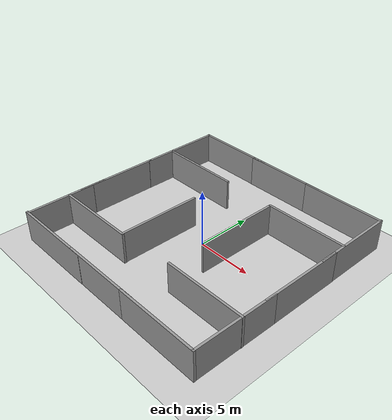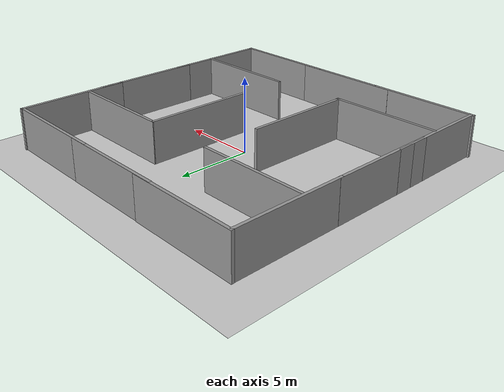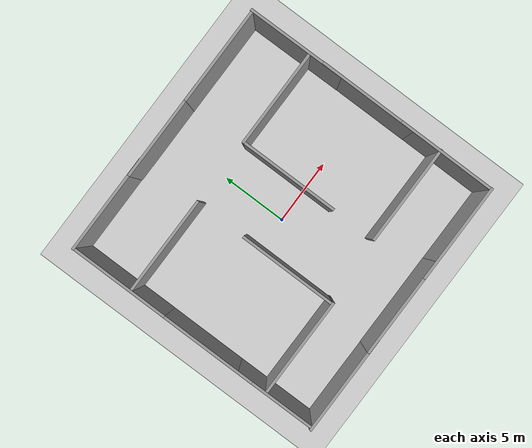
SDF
<sdf version="1.6">
 <world name="default">
  <light name="sun" type="directional">
   <pose>0 0 10 0 -0 0</pose>
   <diffuse>0.8 0.8 0.8 1</diffuse>
   <specular>0.2 0.2 0.2 1</specular>
   <attenuation>
    <range>1000</range>
    <constant>0.9</constant>
    <linear>0.01</linear>
    <quadratic>0.001</quadratic>
   </attenuation>
   <direction>-0.5 0.1 -0.9</direction>
  </light>
  <model name="ground_plane">
   <static>1</static>
   <link name="link">
    <collision name="collision">
     <geometry><plane><normal>0 0 1</normal><size>100 100</size></plane></geometry>
     <surface>
      <contact><collide_bitmask>65535</collide_bitmask></contact>
      <friction><ode><mu>100</mu><mu2>50</mu2></ode></friction>
     </surface>
    </collision>
    <visual name="visual">
     <cast_shadows>0</cast_shadows>
     <geometry><plane><normal>0 0 1</normal><size>100 100</size></plane></geometry>
     <material>
      <script><uri>file://media/materials/scripts/gazebo.material</uri><name>Gazebo/Grey</name></script>
     </material>
    </visual>
   </link>
  </model>
  <gravity>0 0 -9.8</gravity>
  <magnetic_field>6e-06 2.3e-05 -4.2e-05</magnetic_field>
  <atmosphere type="adiabatic"/>
  <physics name="default_physics" default="0" type="ode">
   <max_step_size>0.001</max_step_size>
   <real_time_factor>1</real_time_factor>
   <real_time_update_rate>1000</real_time_update_rate>
  </physics>
  <scene><ambient>0.4 0.4 0.4 1</ambient><background>0.7 0.7 0.7 1</background><shadows>1</shadows></scene>
  <spherical_coordinates>
   <surface_model>EARTH_WGS84</surface_model>
   <latitude_deg>0</latitude_deg>
   <longitude_deg>0</longitude_deg>
   <elevation>0</elevation>
   <heading_deg>0</heading_deg>
  </spherical_coordinates>
  <model name="grey_wall">
   <static>1</static>
   <link name="link">
    <pose>0 0 1.4 0 -0 0</pose>
    <collision name="collision"><geometry><box><size>7.5 0.2 2.8</size></box></geometry></collision>
    <visual name="visual">
     <cast_shadows>0</cast_shadows>
     <geometry><box><size>7.5 0.2 2.8</size></box></geometry>
     <material>
      <script>
       <uri>model://grey_wall/materials/scripts</uri>
       <uri>model://grey_wall/materials/textures</uri>
       <name>vrc/grey_wall</name>
      </script>
     </material>
    </visual>
   </link>
   <pose>6.27087 -9.84764 0 0 -0 0</pose>
  </model>
  <model name="grey_wall_clone">
   <static>1</static>
   <link name="link">
    <pose>0 0 1.4 0 -0 0</pose>
    <collision name="collision"><geometry><box><size>7.5 0.2 2.8</size></box></geometry></collision>
    <visual name="visual">
     <cast_shadows>0</cast_shadows>
     <geometry><box><size>7.5 0.2 2.8</size></box></geometry>
     <material>
      <script>
       <uri>model://grey_wall/materials/scripts</uri>
       <uri>model://grey_wall/materials/textures</uri>
       <name>vrc/grey_wall</name>
      </script>
     </material>
    </visual>
   </link>
   <pose>0.147568 -9.84131 0 0 -0 0</pose>
  </model>
  <model name="grey_wall_clone_0">
   <static>1</static>
   <link name="link">
    <pose>0 0 1.4 0 -0 0</pose>
    <collision name="collision"><geometry><box><size>7.5 0.2 2.8</size></box></geometry></collision>
    <visual name="visual">
     <cast_shadows>0</cast_shadows>
     <geometry><box><size>7.5 0.2 2.8</size></box></geometry>
     <material>
      <script>
       <uri>model://grey_wall/materials/scripts</uri>
       <uri>model://grey_wall/materials/textures</uri>
       <name>vrc/grey_wall</name>
      </script>
     </material>
    </visual>
   </link>
   <pose>-6.23276 -9.85236 0 0 -0 0</pose>
  </model>
  <model name="grey_wall_clone_1">
   <static>1</static>
   <link name="link">
    <pose>0 0 1.4 0 -0 0</pose>
    <collision name="collision"><geometry><box><size>7.5 0.2 2.8</size></box></geometry></collision>
    <visual name="visual">
     <cast_shadows>0</cast_shadows>
     <geometry><box><size>7.5 0.2 2.8</size></box></geometry>
     <material>
      <script>
       <uri>model://grey_wall/materials/scripts</uri>
       <uri>model://grey_wall/materials/textures</uri>
       <name>vrc/grey_wall</name>
      </script>
     </material>
    </visual>
   </link>
   <pose>9.9114 -6.17816 0 0 -0 1.56746</pose>
  </model>
  <model name="grey_wall_clone_2">
   <static>1</static>
   <link name="link">
    <pose>0 0 1.4 0 -0 0</pose>
    <collision name="collision"><geometry><box><size>7.5 0.2 2.8</size></box></geometry></collision>
    <visual name="visual">
     <cast_shadows>0</cast_shadows>
     <geometry><box><size>7.5 0.2 2.8</size></box></geometry>
     <material>
      <script>
       <uri>model://grey_wall/materials/scripts</uri>
       <uri>model://grey_wall/materials/textures</uri>
       <name>vrc/grey_wall</name>
      </script>
     </material>
    </visual>
   </link>
   <pose>9.91759 0.301688 0 0 0 -1.57177</pose>
  </model>
  <model name="grey_wall_clone_3">
   <static>1</static>
   <link name="link">
    <pose>0 0 1.4 0 -0 0</pose>
    <collision name="collision"><geometry><box><size>7.5 0.2 2.8</size></box></geometry></collision>
    <visual name="visual">
     <cast_shadows>0</cast_shadows>
     <geometry><box><size>7.5 0.2 2.8</size></box></geometry>
     <material>
      <script>
       <uri>model://grey_wall/materials/scripts</uri>
       <uri>model://grey_wall/materials/textures</uri>
       <name>vrc/grey_wall</name>
      </script>
     </material>
    </visual>
   </link>
   <pose>9.88468 6.21753 0 0 0 -1.56393</pose>
  </model>
  <model name="grey_wall_clone_4">
   <static>1</static>
   <link name="link">
    <pose>0 0 1.4 0 -0 0</pose>
    <collision name="collision"><geometry><box><size>7.5 0.2 2.8</size></box></geometry></collision>
    <visual name="visual">
     <cast_shadows>0</cast_shadows>
     <geometry><box><size>7.5 0.2 2.8</size></box></geometry>
     <material>
      <script>
       <uri>model://grey_wall/materials/scripts</uri>
       <uri>model://grey_wall/materials/textures</uri>
       <name>vrc/grey_wall</name>
      </script>
     </material>
    </visual>
   </link>
   <pose>6.18637 9.80606 0 0 -0 0</pose>
  </model>
  <model name="grey_wall_clone_5">
   <static>1</static>
   <link name="link">
    <pose>0 0 1.4 0 -0 0</pose>
    <collision name="collision"><geometry><box><size>7.5 0.2 2.8</size></box></geometry></collision>
    <visual name="visual">
     <cast_shadows>0</cast_shadows>
     <geometry><box><size>7.5 0.2 2.8</size></box></geometry>
     <material>
      <script>
       <uri>model://grey_wall/materials/scripts</uri>
       <uri>model://grey_wall/materials/textures</uri>
       <name>vrc/grey_wall</name>
      </script>
     </material>
    </visual>
   </link>
   <pose>1e-06 9.81159 0 0 -0 0</pose>
  </model>
  <model name="grey_wall_clone_6">
   <static>1</static>
   <link name="link">
    <pose>0 0 1.4 0 -0 0</pose>
    <collision name="collision"><geometry><box><size>7.5 0.2 2.8</size></box></geometry></collision>
    <visual name="visual">
     <cast_shadows>0</cast_shadows>
     <geometry><box><size>7.5 0.2 2.8</size></box></geometry>
     <material>
      <script>
       <uri>model://grey_wall/materials/scripts</uri>
       <uri>model://grey_wall/materials/textures</uri>
       <name>vrc/grey_wall</name>
      </script>
     </material>
    </visual>
   </link>
   <pose>-6.12056 9.83896 0 0 -0 0</pose>
  </model>
  <model name="grey_wall_clone_7">
   <static>1</static>
   <link name="link">
    <pose>0 0 1.4 0 -0 0</pose>
    <collision name="collision"><geometry><box><size>7.5 0.2 2.8</size></box></geometry></collision>
    <visual name="visual">
     <cast_shadows>0</cast_shadows>
     <geometry><box><size>7.5 0.2 2.8</size></box></geometry>
     <material>
      <script>
       <uri>model://grey_wall/materials/scripts</uri>
       <uri>model://grey_wall/materials/textures</uri>
       <name>vrc/grey_wall</name>
      </script>
     </material>
    </visual>
   </link>
   <pose>-9.75859 6.08766 0 0 0 -1.57203</pose>
  </model>
  <model name="grey_wall_clone_8">
   <static>1</static>
   <link name="link">
    <pose>0 0 1.4 0 -0 0</pose>
    <collision name="collision"><geometry><box><size>7.5 0.2 2.8</size></box></geometry></collision>
    <visual name="visual">
     <cast_shadows>0</cast_shadows>
     <geometry><box><size>7.5 0.2 2.8</size></box></geometry>
     <material>
      <script>
       <uri>model://grey_wall/materials/scripts</uri>
       <uri>model://grey_wall/materials/textures</uri>
       <name>vrc/grey_wall</name>
      </script>
     </material>
    </visual>
   </link>
   <pose>-9.77309 -1.14151 0 0 0 -1.57213</pose>
  </model>
  <model name="grey_wall_clone_9">
   <static>1</static>
   <link name="link">
    <pose>0 0 1.4 0 -0 0</pose>
    <collision name="collision"><geometry><box><size>7.5 0.2 2.8</size></box></geometry></collision>
    <visual name="visual">
     <cast_shadows>0</cast_shadows>
     <geometry><box><size>7.5 0.2 2.8</size></box></geometry>
     <material>
      <script>
       <uri>model://grey_wall/materials/scripts</uri>
       <uri>model://grey_wall/materials/textures</uri>
       <name>vrc/grey_wall</name>
      </script>
     </material>
    </visual>
   </link>
   <pose>-9.77316 -6.18199 0 0 0 -1.56945</pose>
  </model>
  <model name="grey_wall_clone_10">
   <static>1</static>
   <link name="link">
    <pose>0 0 1.4 0 -0 0</pose>
    <collision name="collision"><geometry><box><size>7.5 0.2 2.8</size></box></geometry></collision>
    <visual name="visual">
     <cast_shadows>0</cast_shadows>
     <geometry><box><size>7.5 0.2 2.8</size></box></geometry>
     <material>
      <script>
       <uri>model://grey_wall/materials/scripts</uri>
       <uri>model://grey_wall/materials/textures</uri>
       <name>vrc/grey_wall</name>
      </script>
     </material>
    </visual>
   </link>
   <pose>6.23653 5.08993 0 0 -0 0</pose>
  </model>
  <model name="grey_wall_clone_11">
   <static>1</static>
   <link name="link">
    <pose>0 0 1.4 0 -0 0</pose>
    <collision name="collision"><geometry><box><size>7.5 0.2 2.8</size></box></geometry></collision>
    <visual name="visual">
     <cast_shadows>0</cast_shadows>
     <geometry><box><size>7.5 0.2 2.8</size></box></geometry>
     <material>
      <script>
       <uri>model://grey_wall/materials/scripts</uri>
       <uri>model://grey_wall/materials/textures</uri>
       <name>vrc/grey_wall</name>
      </script>
     </material>
    </visual>
   </link>
   <pose>-6.07163 5.14403 0 0 -0 0</pose>
  </model>
  <model name="grey_wall_clone_12">
   <static>1</static>
   <link name="link">
    <pose>0 0 1.4 0 -0 0</pose>
    <collision name="collision"><geometry><box><size>7.5 0.2 2.8</size></box></geometry></collision>
    <visual name="visual">
     <cast_shadows>0</cast_shadows>
     <geometry><box><size>7.5 0.2 2.8</size></box></geometry>
     <material>
      <script>
       <uri>model://grey_wall/materials/scripts</uri>
       <uri>model://grey_wall/materials/textures</uri>
       <name>vrc/grey_wall</name>
      </script>
     </material>
    </visual>
   </link>
   <pose>-6.04457 -6.02795 0 0 -0 0</pose>
  </model>
  <model name="grey_wall_clone_13">
   <static>1</static>
   <link name="link">
    <pose>0 0 1.4 0 -0 0</pose>
    <collision name="collision"><geometry><box><size>7.5 0.2 2.8</size></box></geometry></collision>
    <visual name="visual">
     <cast_shadows>0</cast_shadows>
     <geometry><box><size>7.5 0.2 2.8</size></box></geometry>
     <material>
      <script>
       <uri>model://grey_wall/materials/scripts</uri>
       <uri>model://grey_wall/materials/textures</uri>
       <name>vrc/grey_wall</name>
      </script>
     </material>
    </visual>
   </link>
   <pose>6.29061 -5.64924 0 0 -0 0</pose>
  </model>
  <model name="grey_wall_clone_14">
   <static>1</static>
   <link name="link">
    <pose>0 0 1.4 0 -0 0</pose>
    <collision name="collision"><geometry><box><size>7.5 0.2 2.8</size></box></geometry></collision>
    <visual name="visual">
     <cast_shadows>0</cast_shadows>
     <geometry><box><size>7.5 0.2 2.8</size></box></geometry>
     <material>
      <script>
       <uri>model://grey_wall/materials/scripts</uri>
       <uri>model://grey_wall/materials/textures</uri>
       <name>vrc/grey_wall</name>
      </script>
     </material>
    </visual>
   </link>
   <pose>2.58464 1.38396 0 0 -0 1.57088</pose>
  </model>
  <model name="grey_wall_clone_15">
   <static>1</static>
   <link name="link">
    <pose>0 0 1.4 0 -0 0</pose>
    <collision name="collision"><geometry><box><size>7.5 0.2 2.8</size></box></geometry></collision>
    <visual name="visual">
     <cast_shadows>0</cast_shadows>
     <geometry><box><size>7.5 0.2 2.8</size></box></geometry>
     <material>
      <script>
       <uri>model://grey_wall/materials/scripts</uri>
       <uri>model://grey_wall/materials/textures</uri>
       <name>vrc/grey_wall</name>
      </script>
     </material>
    </visual>
   </link>
   <pose>-2.42922 -2.37581 0 0 0 -1.57424</pose>
  </model>
 </world>
</sdf>
